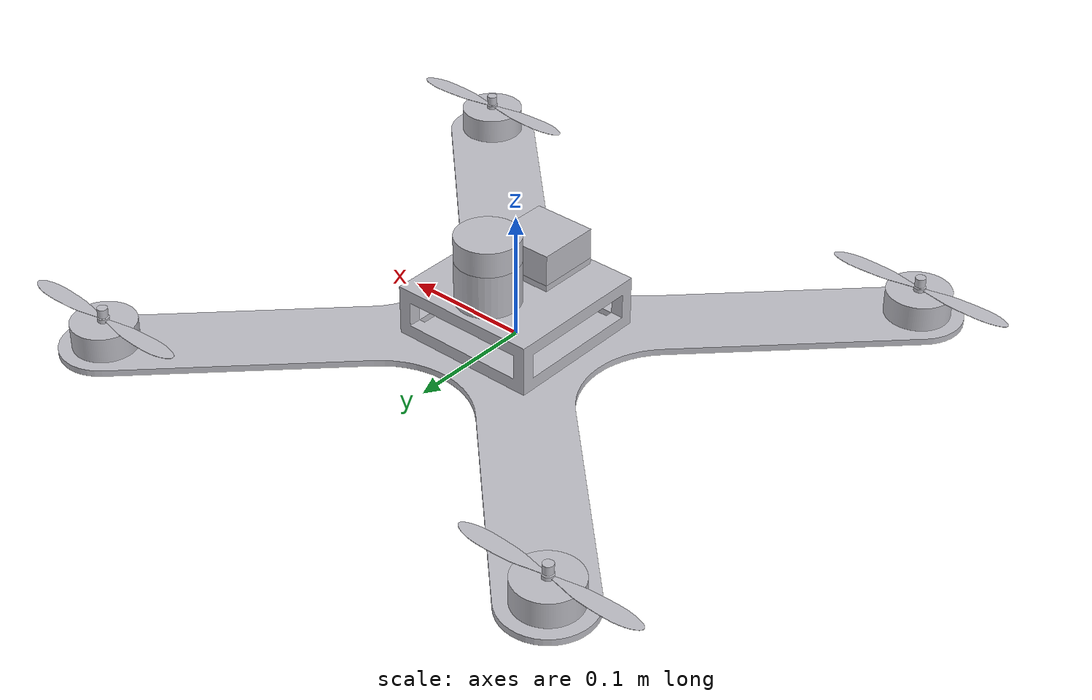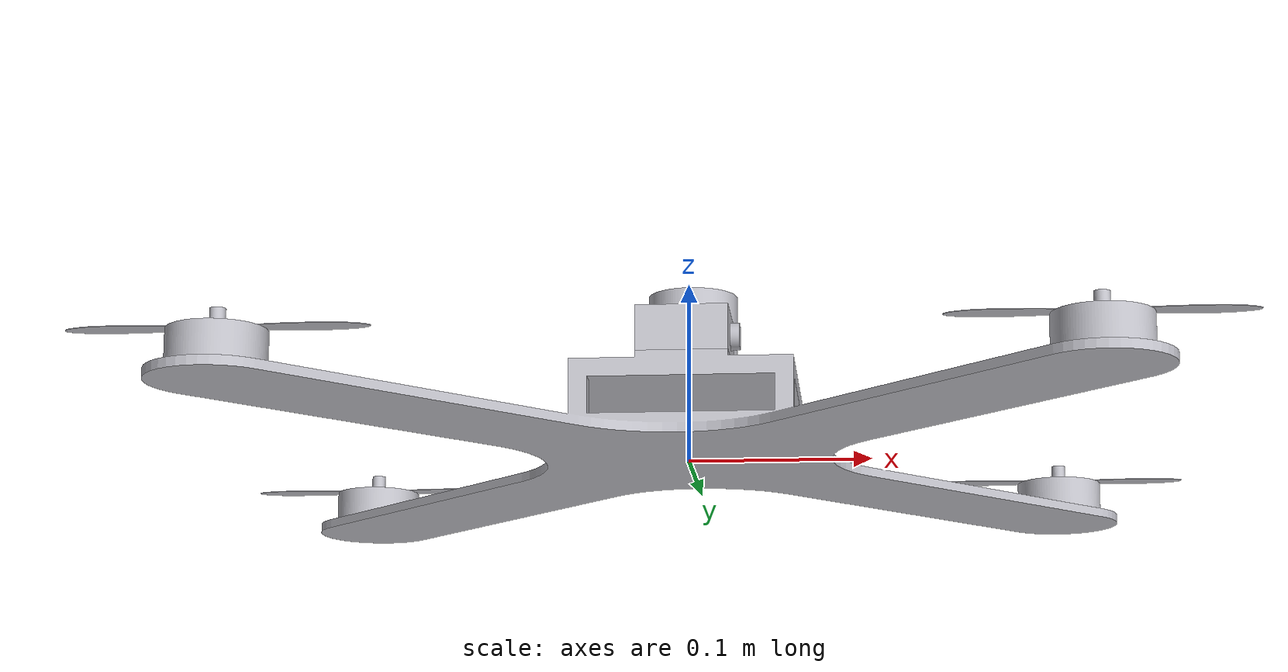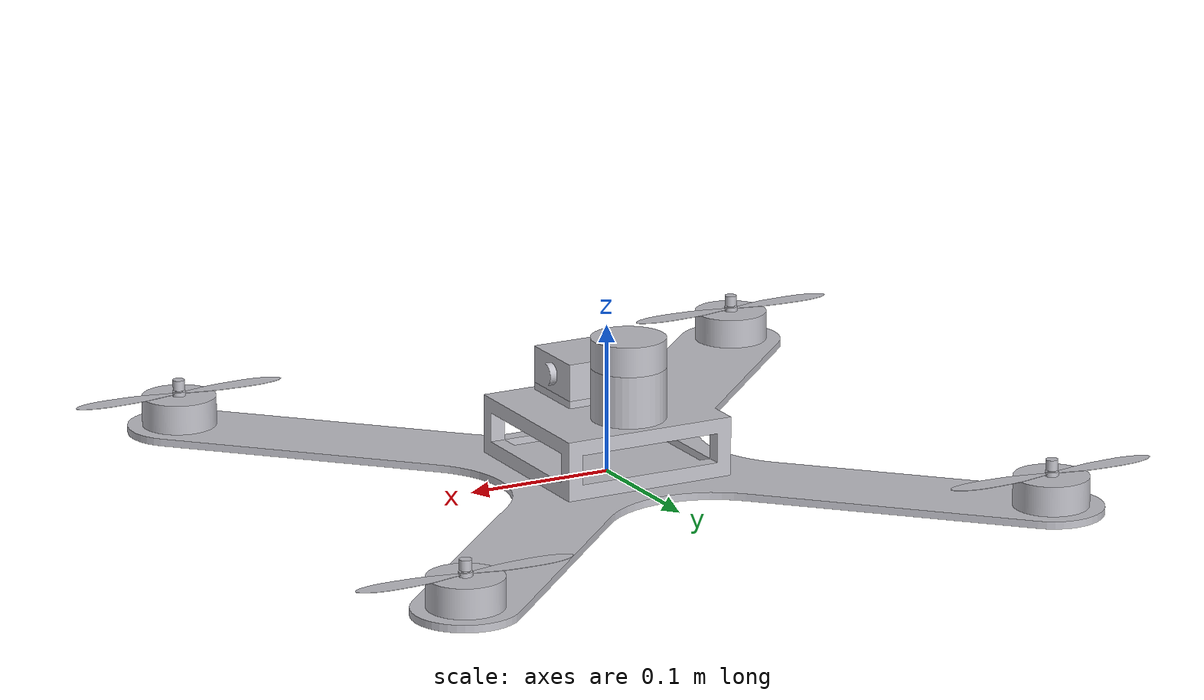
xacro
<?xml version="1.0" ?>
<robot name="drone" xmlns:xacro="http://www.ros.org/wiki/xacro">

<xacro:include filename="$(find drone_description)/urdf/materials.xacro" />
<xacro:include filename="$(find drone_description)/urdf/drone.trans" />
<xacro:include filename="$(find drone_description)/gazebo/drone_materials.gazebo" />
<xacro:include filename="$(find drone_description)/gazebo/drone_physics.gazebo" />
<xacro:include filename="$(find drone_description)/gazebo/drone_plugins.gazebo" />
<link name="base_link">
  <inertial>
    <origin rpy="0 0 0" xyz="0.0 0.002156211479160986 0.0163651441638259"/>
    <mass value="0.8291720950994419"/>
    <inertia ixx="0.009648" ixy="-0.0" ixz="0.0" iyy="0.009574" iyz="-8.8e-05" izz="0.018496"/>
  </inertial>
  <visual>
    <origin rpy="0 0 0" xyz="0 0 0"/>
    <geometry>
      <mesh filename="package://drone_description/meshes/base_link.stl" scale="0.001 0.001 0.001"/>
    </geometry>
    <material name="silver_default"/>
  </visual>
  <collision>
    <origin rpy="0 0 0" xyz="0 0 0"/>
    <geometry>
      <mesh filename="package://drone_description/meshes/base_link.stl" scale="0.001 0.001 0.001"/>
    </geometry>
  </collision>
</link>

<link name="propeller_bright_1">
  <inertial>
    <origin rpy="0 0 0" xyz="5.759433296947947e-08 -1.3530083598722875e-05 0.0015000003406627008"/>
    <mass value="0.0015994551812686354"/>
    <inertia ixx="0.0" ixy="0.0" ixz="0.0" iyy="3e-06" iyz="0.0" izz="3e-06"/>
  </inertial>
  <visual>
    <origin rpy="0 0 0" xyz="-0.212132 -0.212132 -0.025"/>
    <geometry>
      <mesh filename="package://drone_description/meshes/propeller_bright_1.stl" scale="0.001 0.001 0.001"/>
    </geometry>
    <material name="silver_default"/>
  </visual>
  <collision>
    <origin rpy="0 0 0" xyz="-0.212132 -0.212132 -0.025"/>
    <geometry>
      <mesh filename="package://drone_description/meshes/propeller_bright_1.stl" scale="0.001 0.001 0.001"/>
    </geometry>
  </collision>
</link>

<link name="propeller_fright_1">
  <inertial>
    <origin rpy="0 0 0" xyz="1.1117505915869685e-08 1.353008359869512e-05 0.001499999659337281"/>
    <mass value="0.0015994551812686354"/>
    <inertia ixx="0.0" ixy="0.0" ixz="0.0" iyy="3e-06" iyz="0.0" izz="3e-06"/>
  </inertial>
  <visual>
    <origin rpy="0 0 0" xyz="-0.212132 0.212132 -0.025"/>
    <geometry>
      <mesh filename="package://drone_description/meshes/propeller_fright_1.stl" scale="0.001 0.001 0.001"/>
    </geometry>
    <material name="silver_default"/>
  </visual>
  <collision>
    <origin rpy="0 0 0" xyz="-0.212132 0.212132 -0.025"/>
    <geometry>
      <mesh filename="package://drone_description/meshes/propeller_fright_1.stl" scale="0.001 0.001 0.001"/>
    </geometry>
  </collision>
</link>

<link name="propeller_fleft_1">
  <inertial>
    <origin rpy="0 0 0" xyz="-5.759433296947947e-08 1.3530083598722875e-05 0.0015000003406627008"/>
    <mass value="0.0015994551812686354"/>
    <inertia ixx="0.0" ixy="0.0" ixz="-0.0" iyy="3e-06" iyz="-0.0" izz="3e-06"/>
  </inertial>
  <visual>
    <origin rpy="0 0 0" xyz="0.212132 0.212132 -0.025"/>
    <geometry>
      <mesh filename="package://drone_description/meshes/propeller_fleft_1.stl" scale="0.001 0.001 0.001"/>
    </geometry>
    <material name="silver_default"/>
  </visual>
  <collision>
    <origin rpy="0 0 0" xyz="0.212132 0.212132 -0.025"/>
    <geometry>
      <mesh filename="package://drone_description/meshes/propeller_fleft_1.stl" scale="0.001 0.001 0.001"/>
    </geometry>
  </collision>
</link>

<link name="propeller_bleft_1">
  <inertial>
    <origin rpy="0 0 0" xyz="-1.1117505915869685e-08 -1.3530083598722875e-05 0.001499999659337281"/>
    <mass value="0.0015994551812686354"/>
    <inertia ixx="0.0" ixy="0.0" ixz="-0.0" iyy="3e-06" iyz="-0.0" izz="3e-06"/>
  </inertial>
  <visual>
    <origin rpy="0 0 0" xyz="0.212132 -0.212132 -0.025"/>
    <geometry>
      <mesh filename="package://drone_description/meshes/propeller_bleft_1.stl" scale="0.001 0.001 0.001"/>
    </geometry>
    <material name="silver_default"/>
  </visual>
  <collision>
    <origin rpy="0 0 0" xyz="0.212132 -0.212132 -0.025"/>
    <geometry>
      <mesh filename="package://drone_description/meshes/propeller_bleft_1.stl" scale="0.001 0.001 0.001"/>
    </geometry>
  </collision>
</link>

<link name="stopper_fright_1">
  <inertial>
    <origin rpy="0 0 0" xyz="3.4355672251518143e-08 -3.435596435119592e-08 -0.0020344827586206427"/>
    <mass value="0.00016945750773462672"/>
    <inertia ixx="0.0" ixy="0.0" ixz="-0.0" iyy="0.0" iyz="0.0" izz="0.0"/>
  </inertial>
  <visual>
    <origin rpy="0 0 0" xyz="-0.212132 0.212132 -0.035"/>
    <geometry>
      <mesh filename="package://drone_description/meshes/stopper_fright_1.stl" scale="0.001 0.001 0.001"/>
    </geometry>
    <material name="silver_default"/>
  </visual>
  <collision>
    <origin rpy="0 0 0" xyz="-0.212132 0.212132 -0.035"/>
    <geometry>
      <mesh filename="package://drone_description/meshes/stopper_fright_1.stl" scale="0.001 0.001 0.001"/>
    </geometry>
  </collision>
</link>

<link name="stopper_bright_1">
  <inertial>
    <origin rpy="0 0 0" xyz="3.4355672251518143e-08 3.4355964323440347e-08 -0.0020344827586206427"/>
    <mass value="0.00016945750773462675"/>
    <inertia ixx="0.0" ixy="-0.0" ixz="-0.0" iyy="0.0" iyz="-0.0" izz="0.0"/>
  </inertial>
  <visual>
    <origin rpy="0 0 0" xyz="-0.212132 -0.212132 -0.035"/>
    <geometry>
      <mesh filename="package://drone_description/meshes/stopper_bright_1.stl" scale="0.001 0.001 0.001"/>
    </geometry>
    <material name="silver_default"/>
  </visual>
  <collision>
    <origin rpy="0 0 0" xyz="-0.212132 -0.212132 -0.035"/>
    <geometry>
      <mesh filename="package://drone_description/meshes/stopper_bright_1.stl" scale="0.001 0.001 0.001"/>
    </geometry>
  </collision>
</link>

<link name="stopper_fleft_1">
  <inertial>
    <origin rpy="0 0 0" xyz="-3.4355672251518143e-08 -3.4355964323440347e-08 -0.0020344827586206427"/>
    <mass value="0.00016945750773462675"/>
    <inertia ixx="0.0" ixy="-0.0" ixz="0.0" iyy="0.0" iyz="0.0" izz="0.0"/>
  </inertial>
  <visual>
    <origin rpy="0 0 0" xyz="0.212132 0.212132 -0.035"/>
    <geometry>
      <mesh filename="package://drone_description/meshes/stopper_fleft_1.stl" scale="0.001 0.001 0.001"/>
    </geometry>
    <material name="silver_default"/>
  </visual>
  <collision>
    <origin rpy="0 0 0" xyz="0.212132 0.212132 -0.035"/>
    <geometry>
      <mesh filename="package://drone_description/meshes/stopper_fleft_1.stl" scale="0.001 0.001 0.001"/>
    </geometry>
  </collision>
</link>

<link name="stopper_bleft_1">
  <inertial>
    <origin rpy="0 0 0" xyz="-3.4355672251518143e-08 3.4355964323440347e-08 -0.0020344827586206427"/>
    <mass value="0.00016945750773462672"/>
    <inertia ixx="0.0" ixy="0.0" ixz="0.0" iyy="0.0" iyz="-0.0" izz="0.0"/>
  </inertial>
  <visual>
    <origin rpy="0 0 0" xyz="0.212132 -0.212132 -0.035"/>
    <geometry>
      <mesh filename="package://drone_description/meshes/stopper_bleft_1.stl" scale="0.001 0.001 0.001"/>
    </geometry>
    <material name="silver_default"/>
  </visual>
  <collision>
    <origin rpy="0 0 0" xyz="0.212132 -0.212132 -0.035"/>
    <geometry>
      <mesh filename="package://drone_description/meshes/stopper_bleft_1.stl" scale="0.001 0.001 0.001"/>
    </geometry>
  </collision>
</link>

<link name="motor_fright_1">
  <inertial>
    <origin rpy="0 0 0" xyz="3.435596171441624e-08 -3.435596435119592e-08 0.010074626865671642"/>
    <mass value="0.3157300616857739"/>
    <inertia ixx="6e-05" ixy="0.0" ixz="-0.0" iyy="6e-05" iyz="0.0" izz="9.8e-05"/>
  </inertial>
  <visual>
    <origin rpy="0 0 0" xyz="-0.212132 0.212132 -0.005"/>
    <geometry>
      <mesh filename="package://drone_description/meshes/motor_fright_1.stl" scale="0.001 0.001 0.001"/>
    </geometry>
    <material name="silver_default"/>
  </visual>
  <collision>
    <origin rpy="0 0 0" xyz="-0.212132 0.212132 -0.005"/>
    <geometry>
      <mesh filename="package://drone_description/meshes/motor_fright_1.stl" scale="0.001 0.001 0.001"/>
    </geometry>
  </collision>
</link>

<link name="motor_bright_1">
  <inertial>
    <origin rpy="0 0 0" xyz="3.43559656279524e-08 3.4355964323440347e-08 0.010074626865671645"/>
    <mass value="0.3157300616857742"/>
    <inertia ixx="6e-05" ixy="0.0" ixz="-0.0" iyy="6e-05" iyz="0.0" izz="9.8e-05"/>
  </inertial>
  <visual>
    <origin rpy="0 0 0" xyz="-0.212132 -0.212132 -0.005"/>
    <geometry>
      <mesh filename="package://drone_description/meshes/motor_bright_1.stl" scale="0.001 0.001 0.001"/>
    </geometry>
    <material name="silver_default"/>
  </visual>
  <collision>
    <origin rpy="0 0 0" xyz="-0.212132 -0.212132 -0.005"/>
    <geometry>
      <mesh filename="package://drone_description/meshes/motor_bright_1.stl" scale="0.001 0.001 0.001"/>
    </geometry>
  </collision>
</link>

<link name="motor_bleft_1">
  <inertial>
    <origin rpy="0 0 0" xyz="-3.435596171441624e-08 3.4355964323440347e-08 0.010074626865671642"/>
    <mass value="0.3157300616857739"/>
    <inertia ixx="6e-05" ixy="-0.0" ixz="0.0" iyy="6e-05" iyz="0.0" izz="9.8e-05"/>
  </inertial>
  <visual>
    <origin rpy="0 0 0" xyz="0.212132 -0.212132 -0.005"/>
    <geometry>
      <mesh filename="package://drone_description/meshes/motor_bleft_1.stl" scale="0.001 0.001 0.001"/>
    </geometry>
    <material name="silver_default"/>
  </visual>
  <collision>
    <origin rpy="0 0 0" xyz="0.212132 -0.212132 -0.005"/>
    <geometry>
      <mesh filename="package://drone_description/meshes/motor_bleft_1.stl" scale="0.001 0.001 0.001"/>
    </geometry>
  </collision>
</link>

<link name="motor_fleft_1">
  <inertial>
    <origin rpy="0 0 0" xyz="-3.43559656279524e-08 -3.4355964323440347e-08 0.010074626865671645"/>
    <mass value="0.3157300616857742"/>
    <inertia ixx="6e-05" ixy="0.0" ixz="0.0" iyy="6e-05" iyz="-0.0" izz="9.8e-05"/>
  </inertial>
  <visual>
    <origin rpy="0 0 0" xyz="0.212132 0.212132 -0.005"/>
    <geometry>
      <mesh filename="package://drone_description/meshes/motor_fleft_1.stl" scale="0.001 0.001 0.001"/>
    </geometry>
    <material name="silver_default"/>
  </visual>
  <collision>
    <origin rpy="0 0 0" xyz="0.212132 0.212132 -0.005"/>
    <geometry>
      <mesh filename="package://drone_description/meshes/motor_fleft_1.stl" scale="0.001 0.001 0.001"/>
    </geometry>
  </collision>
</link>

<link name="lidar_1">
  <inertial>
    <origin rpy="0 0 0" xyz="-3.618764437576268e-18 -3.469446951953614e-18 0.009999999999999995"/>
    <mass value="0.3082687791334984"/>
    <inertia ixx="5.8e-05" ixy="-0.0" ixz="-0.0" iyy="5.8e-05" iyz="-0.0" izz="9.6e-05"/>
  </inertial>
  <visual>
    <origin rpy="0 0 0" xyz="-0.0 -0.03 -0.08"/>
    <geometry>
      <mesh filename="package://drone_description/meshes/lidar_1.stl" scale="0.001 0.001 0.001"/>
    </geometry>
    <material name="silver_default"/>
  </visual>
  <collision>
    <origin rpy="0 0 0" xyz="-0.0 -0.03 -0.08"/>
    <geometry>
      <mesh filename="package://drone_description/meshes/lidar_1.stl" scale="0.001 0.001 0.001"/>
    </geometry>
  </collision>
</link>

<link name="camera_1">
  <inertial>
    <origin rpy="0 0 0" xyz="0.00038335257158038225 -1.0911410663894117e-14 0.012500000000000053"/>
    <mass value="0.49756104753050334"/>
    <inertia ixx="0.000128" ixy="0.0" ixz="-0.0" iyy="0.000133" iyz="0.0" izz="0.00021"/>
  </inertial>
  <visual>
    <origin rpy="0 0 0" xyz="-0.0 0.03 -0.05"/>
    <geometry>
      <mesh filename="package://drone_description/meshes/camera_1.stl" scale="0.001 0.001 0.001"/>
    </geometry>
    <material name="silver_default"/>
  </visual>
  <collision>
    <origin rpy="0 0 0" xyz="-0.0 0.03 -0.05"/>
    <geometry>
      <mesh filename="package://drone_description/meshes/camera_1.stl" scale="0.001 0.001 0.001"/>
    </geometry>
  </collision>
</link>

<joint name="revolve_bright" type="continuous">
  <origin rpy="0 0 0" xyz="0.0 0.0 0.02"/>
  <parent link="motor_bright_1"/>
  <child link="propeller_bright_1"/>
  <axis xyz="0.0 0.0 1.0"/>
</joint>

<joint name="revolve_fright" type="continuous">
  <origin rpy="0 0 0" xyz="0.0 0.0 0.02"/>
  <parent link="motor_fright_1"/>
  <child link="propeller_fright_1"/>
  <axis xyz="0.0 0.0 1.0"/>
</joint>

<joint name="revolve_fleft" type="continuous">
  <origin rpy="0 0 0" xyz="0.0 0.0 0.02"/>
  <parent link="motor_fleft_1"/>
  <child link="propeller_fleft_1"/>
  <axis xyz="0.0 0.0 1.0"/>
</joint>

<joint name="revolve_bleft" type="continuous">
  <origin rpy="0 0 0" xyz="0.0 0.0 0.02"/>
  <parent link="motor_bleft_1"/>
  <child link="propeller_bleft_1"/>
  <axis xyz="0.0 0.0 1.0"/>
</joint>

<joint name="stopper_rigid_fright" type="fixed">
  <origin rpy="0 0 0" xyz="0.0 0.0 0.03"/>
  <parent link="motor_fright_1"/>
  <child link="stopper_fright_1"/>
</joint>

<joint name="stopper_rigid_bright" type="fixed">
  <origin rpy="0 0 0" xyz="0.0 0.0 0.03"/>
  <parent link="motor_bright_1"/>
  <child link="stopper_bright_1"/>
</joint>

<joint name="stopper_rigid_fleft" type="fixed">
  <origin rpy="0 0 0" xyz="0.0 0.0 0.03"/>
  <parent link="motor_fleft_1"/>
  <child link="stopper_fleft_1"/>
</joint>

<joint name="stopper_rigid_bleft" type="fixed">
  <origin rpy="0 0 0" xyz="0.0 0.0 0.03"/>
  <parent link="motor_bleft_1"/>
  <child link="stopper_bleft_1"/>
</joint>

<joint name="motor_fright_rigid" type="fixed">
  <origin rpy="0 0 0" xyz="0.212132 -0.212132 0.005"/>
  <parent link="base_link"/>
  <child link="motor_fright_1"/>
</joint>

<joint name="motor_bright_rigid" type="fixed">
  <origin rpy="0 0 0" xyz="0.212132 0.212132 0.005"/>
  <parent link="base_link"/>
  <child link="motor_bright_1"/>
</joint>

<joint name="motor_bleft_rigid" type="fixed">
  <origin rpy="0 0 0" xyz="-0.212132 0.212132 0.005"/>
  <parent link="base_link"/>
  <child link="motor_bleft_1"/>
</joint>

<joint name="motor_fleft_rigid" type="fixed">
  <origin rpy="0 0 0" xyz="-0.212132 -0.212132 0.005"/>
  <parent link="base_link"/>
  <child link="motor_fleft_1"/>
</joint>

<joint name="lidar_rigid" type="fixed">
  <origin rpy="0 0 0" xyz="0.0 0.03 0.08"/>
  <parent link="base_link"/>
  <child link="lidar_1"/>
</joint>

<joint name="Rigid24" type="fixed">
  <origin rpy="0 0 0" xyz="0.0 -0.03 0.05"/>
  <parent link="base_link"/>
  <child link="camera_1"/>
</joint>

</robot>

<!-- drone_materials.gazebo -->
<robot name="drone" xmlns:xacro="http://www.ros.org/wiki/xacro" >

<xacro:property name="body_color" value="Gazebo/Blue" />
<xacro:property name="motor_color" value="Gazebo/Silver" />
<xacro:property name="sensor_color" value="Gazebo/Red" />
<xacro:property name="stopper_color" value="Gazebo/Black" />
<xacro:property name="propeller_color" value="Gazebo/Yellow" />

<gazebo reference="base_link">
  <material>${body_color}</material>
</gazebo>

<gazebo reference="propeller_bright_1">
  <material>${propeller_color}</material>
</gazebo>

<gazebo reference="propeller_fright_1">
  <material>${propeller_color}</material>
</gazebo>

<gazebo reference="propeller_fleft_1">
  <material>${propeller_color}</material>
</gazebo>

<gazebo reference="propeller_bleft_1">
  <material>${propeller_color}</material>
</gazebo>

<gazebo reference="stopper_fright_1">
  <material>${stopper_color}</material>
</gazebo>

<gazebo reference="stopper_bright_1">
  <material>${stopper_color}</material>
</gazebo>

<gazebo reference="stopper_fleft_1">
  <material>${stopper_color}</material>
</gazebo>

<gazebo reference="stopper_bleft_1">
  <material>${stopper_color}</material>
</gazebo>

<gazebo reference="motor_fright_1">
  <material>${motor_color}</material>
</gazebo>

<gazebo reference="motor_bright_1">
  <material>${motor_color}</material>
</gazebo>

<gazebo reference="motor_bleft_1">
  <material>${motor_color}</material>
</gazebo>

<gazebo reference="motor_fleft_1">
  <material>${motor_color}</material>
</gazebo>

<gazebo reference="lidar_1">
  <material>${sensor_color}</material>
</gazebo>

<gazebo reference="camera_1">
  <material>${sensor_color}</material>
</gazebo>

</robot>
